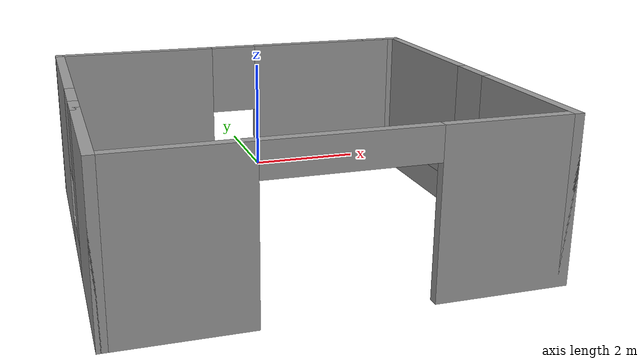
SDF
<?xml version='1.0'?>
<sdf version='1.6'>
  <model name='house5'>
    <pose frame=''>-0.555 -3.575 0 0 -0 0</pose>
    <link name='Wall_0'>
      <pose frame=''>-3.175 1.05 0 0 -0 -1.5708</pose>
      <visual name='Wall_0_Visual_0'>
        <pose frame=''>-0.661468 0 1.25 0 -0 0</pose>
        <geometry>
          <box>
            <size>2.67706 0.15 2.5</size>
          </box>
        </geometry>
        <material>
          <script>
            <uri>file://media/materials/scripts/gazebo.material</uri>
            <name>Gazebo/Grey</name>
          </script>
          <ambient>1 1 1 1</ambient>
        </material>
        <meta>
          <layer>0</layer>
        </meta>
      </visual>
      <collision name='Wall_0_Collision_0'>
        <geometry>
          <box>
            <size>2.67706 0.15 2.5</size>
          </box>
        </geometry>
        <pose frame=''>-0.661468 0 1.25 0 -0 0</pose>
      </collision>
      <visual name='Wall_0_Visual_1'>
        <pose frame=''>1.33853 0 0.25 0 -0 0</pose>
        <geometry>
          <box>
            <size>1.32294 0.15 0.5</size>
          </box>
        </geometry>
        <material>
          <script>
            <uri>file://media/materials/scripts/gazebo.material</uri>
            <name>Gazebo/Grey</name>
          </script>
          <ambient>1 1 1 1</ambient>
        </material>
        <meta>
          <layer>0</layer>
        </meta>
      </visual>
      <collision name='Wall_0_Collision_1'>
        <geometry>
          <box>
            <size>1.32294 0.15 0.5</size>
          </box>
        </geometry>
        <pose frame=''>1.33853 0 0.25 0 -0 0</pose>
      </collision>
      <visual name='Wall_0_Visual_2'>
        <pose frame=''>1.73853 0 1.5 0 -0 0</pose>
        <geometry>
          <box>
            <size>0.522937 0.15 2</size>
          </box>
        </geometry>
        <material>
          <script>
            <uri>file://media/materials/scripts/gazebo.material</uri>
            <name>Gazebo/Grey</name>
          </script>
          <ambient>1 1 1 1</ambient>
        </material>
        <meta>
          <layer>0</layer>
        </meta>
      </visual>
      <collision name='Wall_0_Collision_2'>
        <geometry>
          <box>
            <size>0.522937 0.15 2</size>
          </box>
        </geometry>
        <pose frame=''>1.73853 0 1.5 0 -0 0</pose>
      </collision>
      <visual name='Wall_0_Visual_3'>
        <pose frame=''>1.07706 0 1.9 0 -0 0</pose>
        <geometry>
          <box>
            <size>0.8 0.15 1.2</size>
          </box>
        </geometry>
        <material>
          <script>
            <uri>file://media/materials/scripts/gazebo.material</uri>
            <name>Gazebo/Grey</name>
          </script>
          <ambient>1 1 1 1</ambient>
        </material>
        <meta>
          <layer>0</layer>
        </meta>
      </visual>
      <collision name='Wall_0_Collision_3'>
        <geometry>
          <box>
            <size>0.8 0.15 1.2</size>
          </box>
        </geometry>
        <pose frame=''>1.07706 0 1.9 0 -0 0</pose>
      </collision>
    </link>
    <link name='Wall_10'>
      <collision name='Wall_10_Collision'>
        <geometry>
          <box>
            <size>0.15 0.15 2.5</size>
          </box>
        </geometry>
        <pose frame=''>0 0 1.25 0 -0 0</pose>
      </collision>
      <visual name='Wall_10_Visual'>
        <pose frame=''>0 0 1.25 0 -0 0</pose>
        <geometry>
          <box>
            <size>0.15 0.15 2.5</size>
          </box>
        </geometry>
        <material>
          <script>
            <uri>file://media/materials/scripts/gazebo.material</uri>
            <name>Gazebo/Grey</name>
          </script>
          <ambient>1 1 1 1</ambient>
        </material>
        <meta>
          <layer>0</layer>
        </meta>
      </visual>
      <pose frame=''>3.175 2.875 0 0 -0 0</pose>
    </link>
    <link name='Wall_11'>
      <collision name='Wall_11_Collision'>
        <geometry>
          <box>
            <size>0.15 0.15 2.5</size>
          </box>
        </geometry>
        <pose frame=''>0 0 1.25 0 -0 0</pose>
      </collision>
      <visual name='Wall_11_Visual'>
        <pose frame=''>0 0 1.25 0 -0 0</pose>
        <geometry>
          <box>
            <size>0.15 0.15 2.5</size>
          </box>
        </geometry>
        <material>
          <script>
            <uri>file://media/materials/scripts/gazebo.material</uri>
            <name>Gazebo/Grey</name>
          </script>
          <ambient>1 1 1 1</ambient>
        </material>
        <meta>
          <layer>0</layer>
        </meta>
      </visual>
      <pose frame=''>3.175 2.875 0 0 -0 0</pose>
    </link>
    <link name='Wall_12'>
      <collision name='Wall_12_Collision'>
        <geometry>
          <box>
            <size>0.25 0.15 2.5</size>
          </box>
        </geometry>
        <pose frame=''>0 0 1.25 0 -0 0</pose>
      </collision>
      <visual name='Wall_12_Visual'>
        <pose frame=''>0 0 1.25 0 -0 0</pose>
        <geometry>
          <box>
            <size>0.25 0.15 2.5</size>
          </box>
        </geometry>
        <material>
          <script>
            <uri>file://media/materials/scripts/gazebo.material</uri>
            <name>Gazebo/Grey</name>
          </script>
          <ambient>1 1 1 1</ambient>
        </material>
        <meta>
          <layer>0</layer>
        </meta>
      </visual>
      <pose frame=''>3.175 2.925 0 0 -0 1.5708</pose>
    </link>
    <link name='Wall_13'>
      <collision name='Wall_13_Collision'>
        <geometry>
          <box>
            <size>0.75 0.15 2.5</size>
          </box>
        </geometry>
        <pose frame=''>0 0 1.25 0 -0 0</pose>
      </collision>
      <visual name='Wall_13_Visual'>
        <pose frame=''>0 0 1.25 0 -0 0</pose>
        <geometry>
          <box>
            <size>0.75 0.15 2.5</size>
          </box>
        </geometry>
        <material>
          <script>
            <uri>file://media/materials/scripts/gazebo.material</uri>
            <name>Gazebo/Grey</name>
          </script>
          <ambient>1 1 1 1</ambient>
        </material>
        <meta>
          <layer>0</layer>
        </meta>
      </visual>
      <pose frame=''>2.875 2.975 0 0 -0 3.14159</pose>
    </link>
    <link name='Wall_3'>
      <pose frame=''>-0.125 2.975 0 0 -0 3.14159</pose>
      <visual name='Wall_3_Visual_0'>
        <pose frame=''>-1.79063 0 1.25 0 -0 0</pose>
        <geometry>
          <box>
            <size>2.66873 0.15 2.5</size>
          </box>
        </geometry>
        <material>
          <script>
            <uri>file://media/materials/scripts/gazebo.material</uri>
            <name>Gazebo/Grey</name>
          </script>
          <ambient>1 1 1 1</ambient>
        </material>
        <meta>
          <layer>0</layer>
        </meta>
      </visual>
      <collision name='Wall_3_Collision_0'>
        <geometry>
          <box>
            <size>2.66873 0.15 2.5</size>
          </box>
        </geometry>
        <pose frame=''>-1.79063 0 1.25 0 -0 0</pose>
      </collision>
      <visual name='Wall_3_Visual_1'>
        <pose frame=''>1.33437 0 0.25 0 -0 0</pose>
        <geometry>
          <box>
            <size>3.58127 0.15 0.5</size>
          </box>
        </geometry>
        <material>
          <script>
            <uri>file://media/materials/scripts/gazebo.material</uri>
            <name>Gazebo/Grey</name>
          </script>
          <ambient>1 1 1 1</ambient>
        </material>
        <meta>
          <layer>0</layer>
        </meta>
      </visual>
      <collision name='Wall_3_Collision_1'>
        <geometry>
          <box>
            <size>3.58127 0.15 0.5</size>
          </box>
        </geometry>
        <pose frame=''>1.33437 0 0.25 0 -0 0</pose>
      </collision>
      <visual name='Wall_3_Visual_2'>
        <pose frame=''>1.73437 0 1.5 0 -0 0</pose>
        <geometry>
          <box>
            <size>2.78126 0.15 2</size>
          </box>
        </geometry>
        <material>
          <script>
            <uri>file://media/materials/scripts/gazebo.material</uri>
            <name>Gazebo/Grey</name>
          </script>
          <ambient>1 1 1 1</ambient>
        </material>
        <meta>
          <layer>0</layer>
        </meta>
      </visual>
      <collision name='Wall_3_Collision_2'>
        <geometry>
          <box>
            <size>2.78126 0.15 2</size>
          </box>
        </geometry>
        <pose frame=''>1.73437 0 1.5 0 -0 0</pose>
      </collision>
      <visual name='Wall_3_Visual_3'>
        <pose frame=''>-0.056265 0 1.9 0 -0 0</pose>
        <geometry>
          <box>
            <size>0.8 0.15 1.2</size>
          </box>
        </geometry>
        <material>
          <script>
            <uri>file://media/materials/scripts/gazebo.material</uri>
            <name>Gazebo/Grey</name>
          </script>
          <ambient>1 1 1 1</ambient>
        </material>
        <meta>
          <layer>0</layer>
        </meta>
      </visual>
      <collision name='Wall_3_Collision_3'>
        <geometry>
          <box>
            <size>0.8 0.15 1.2</size>
          </box>
        </geometry>
        <pose frame=''>-0.056265 0 1.9 0 -0 0</pose>
      </collision>
    </link>
    <link name='Wall_5'>
      <collision name='Wall_5_Collision'>
        <geometry>
          <box>
            <size>2.25 0.15 2.5</size>
          </box>
        </geometry>
        <pose frame=''>0 0 1.25 0 -0 0</pose>
      </collision>
      <visual name='Wall_5_Visual'>
        <pose frame=''>0 0 1.25 0 -0 0</pose>
        <geometry>
          <box>
            <size>2.25 0.15 2.5</size>
          </box>
        </geometry>
        <material>
          <script>
            <uri>file://media/materials/scripts/gazebo.material</uri>
            <name>Gazebo/Grey</name>
          </script>
          <ambient>1 1 1 1</ambient>
        </material>
        <meta>
          <layer>0</layer>
        </meta>
      </visual>
      <pose frame=''>-3.175 -1.925 0 0 -0 -1.5708</pose>
    </link>
    <link name='Wall_6'>
      <pose frame=''>0 -2.975 0 0 -0 0</pose>
      <visual name='Wall_6_Visual_0'>
        <pose frame=''>-2.22554 0 1.25 0 -0 0</pose>
        <geometry>
          <box>
            <size>2.04891 0.15 2.5</size>
          </box>
        </geometry>
        <material>
          <script>
            <uri>file://media/materials/scripts/gazebo.material</uri>
            <name>Gazebo/Grey</name>
          </script>
          <ambient>1 1 1 1</ambient>
        </material>
        <meta>
          <layer>0</layer>
        </meta>
      </visual>
      <collision name='Wall_6_Collision_0'>
        <geometry>
          <box>
            <size>2.04891 0.15 2.5</size>
          </box>
        </geometry>
        <pose frame=''>-2.22554 0 1.25 0 -0 0</pose>
      </collision>
      <visual name='Wall_6_Visual_1'>
        <pose frame=''>2.23777 0 1.25 0 -0 0</pose>
        <geometry>
          <box>
            <size>2.02447 0.15 2.5</size>
          </box>
        </geometry>
        <material>
          <script>
            <uri>file://media/materials/scripts/gazebo.material</uri>
            <name>Gazebo/Grey</name>
          </script>
          <ambient>1 1 1 1</ambient>
        </material>
        <meta>
          <layer>0</layer>
        </meta>
      </visual>
      <collision name='Wall_6_Collision_1'>
        <geometry>
          <box>
            <size>2.02447 0.15 2.5</size>
          </box>
        </geometry>
        <pose frame=''>2.23777 0 1.25 0 -0 0</pose>
      </collision>
      <visual name='Wall_6_Visual_2'>
        <pose frame=''>0.012222 0 2.25 0 -0 0</pose>
        <geometry>
          <box>
            <size>2.42662 0.15 0.5</size>
          </box>
        </geometry>
        <material>
          <script>
            <uri>file://media/materials/scripts/gazebo.material</uri>
            <name>Gazebo/Grey</name>
          </script>
          <ambient>1 1 1 1</ambient>
        </material>
        <meta>
          <layer>0</layer>
        </meta>
      </visual>
      <collision name='Wall_6_Collision_2'>
        <geometry>
          <box>
            <size>2.42662 0.15 0.5</size>
          </box>
        </geometry>
        <pose frame=''>0.012222 0 2.25 0 -0 0</pose>
      </collision>
    </link>
    <link name='Wall_7'>
      <pose frame=''>3.175 -0.05 0 0 -0 1.5708</pose>
      <visual name='Wall_7_Visual_0'>
        <pose frame=''>-1.76949 0 1.25 0 -0 0</pose>
        <geometry>
          <box>
            <size>2.46102 0.15 2.5</size>
          </box>
        </geometry>
        <material>
          <script>
            <uri>file://media/materials/scripts/gazebo.material</uri>
            <name>Gazebo/Grey</name>
          </script>
          <ambient>1 1 1 1</ambient>
        </material>
        <meta>
          <layer>0</layer>
        </meta>
      </visual>
      <collision name='Wall_7_Collision_0'>
        <geometry>
          <box>
            <size>2.46102 0.15 2.5</size>
          </box>
        </geometry>
        <pose frame=''>-1.76949 0 1.25 0 -0 0</pose>
      </collision>
      <visual name='Wall_7_Visual_1'>
        <pose frame=''>1.23051 0 0.25 0 -0 0</pose>
        <geometry>
          <box>
            <size>3.53898 0.15 0.5</size>
          </box>
        </geometry>
        <material>
          <script>
            <uri>file://media/materials/scripts/gazebo.material</uri>
            <name>Gazebo/Grey</name>
          </script>
          <ambient>1 1 1 1</ambient>
        </material>
        <meta>
          <layer>0</layer>
        </meta>
      </visual>
      <collision name='Wall_7_Collision_1'>
        <geometry>
          <box>
            <size>3.53898 0.15 0.5</size>
          </box>
        </geometry>
        <pose frame=''>1.23051 0 0.25 0 -0 0</pose>
      </collision>
      <visual name='Wall_7_Visual_2'>
        <pose frame=''>1.63051 0 1.5 0 -0 0</pose>
        <geometry>
          <box>
            <size>2.73898 0.15 2</size>
          </box>
        </geometry>
        <material>
          <script>
            <uri>file://media/materials/scripts/gazebo.material</uri>
            <name>Gazebo/Grey</name>
          </script>
          <ambient>1 1 1 1</ambient>
        </material>
        <meta>
          <layer>0</layer>
        </meta>
      </visual>
      <collision name='Wall_7_Collision_2'>
        <geometry>
          <box>
            <size>2.73898 0.15 2</size>
          </box>
        </geometry>
        <pose frame=''>1.63051 0 1.5 0 -0 0</pose>
      </collision>
      <visual name='Wall_7_Visual_3'>
        <pose frame=''>-0.138978 0 1.9 0 -0 0</pose>
        <geometry>
          <box>
            <size>0.8 0.15 1.2</size>
          </box>
        </geometry>
        <material>
          <script>
            <uri>file://media/materials/scripts/gazebo.material</uri>
            <name>Gazebo/Grey</name>
          </script>
          <ambient>1 1 1 1</ambient>
        </material>
        <meta>
          <layer>0</layer>
        </meta>
      </visual>
      <collision name='Wall_7_Collision_3'>
        <geometry>
          <box>
            <size>0.8 0.15 1.2</size>
          </box>
        </geometry>
        <pose frame=''>-0.138978 0 1.9 0 -0 0</pose>
      </collision>
    </link>

    <static>1</static>
  </model>
</sdf>
